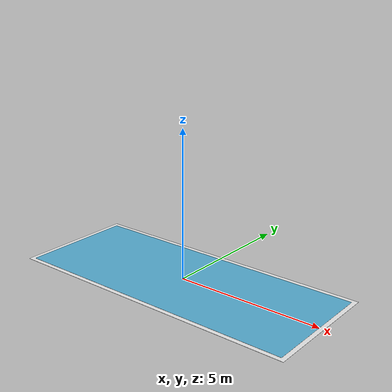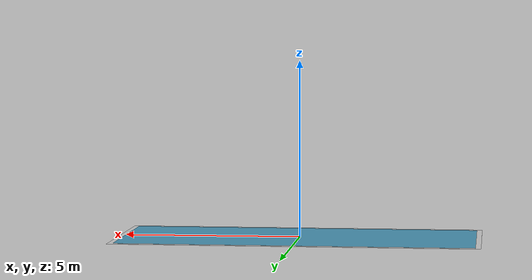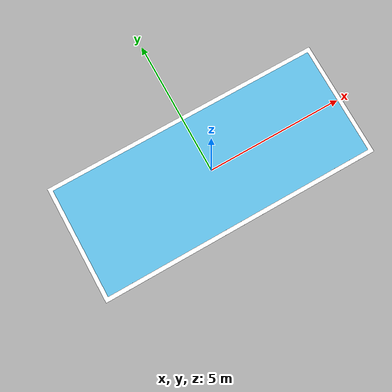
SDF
<?xml version="1.0" ?>
<!-- 대기 구역 바닥 표시. 모델 원점 = 패드 중심, x = 10 m, y = 4 m. 충돌체 없음(도색). -->
<sdf version="1.8">
  <model name="waiting_zone">
    <static>true</static>
    <link name="link">
      <visual name="pad">
        <pose>0 0 0.003 0 0 0</pose>
        <geometry><box><size>10.0 4.0 0.006</size></box></geometry>
        <material>
          <ambient>0.35 0.70 0.85 1</ambient>
          <diffuse>0.35 0.70 0.85 1</diffuse>
        </material>
      </visual>
      <visual name="border">
        <pose>0 0 0.002 0 0 0</pose>
        <geometry><box><size>10.3 4.3 0.004</size></box></geometry>
        <material>
          <ambient>0.95 0.95 0.95 1</ambient>
          <diffuse>0.95 0.95 0.95 1</diffuse>
        </material>
      </visual>
    </link>
  </model>
</sdf>
